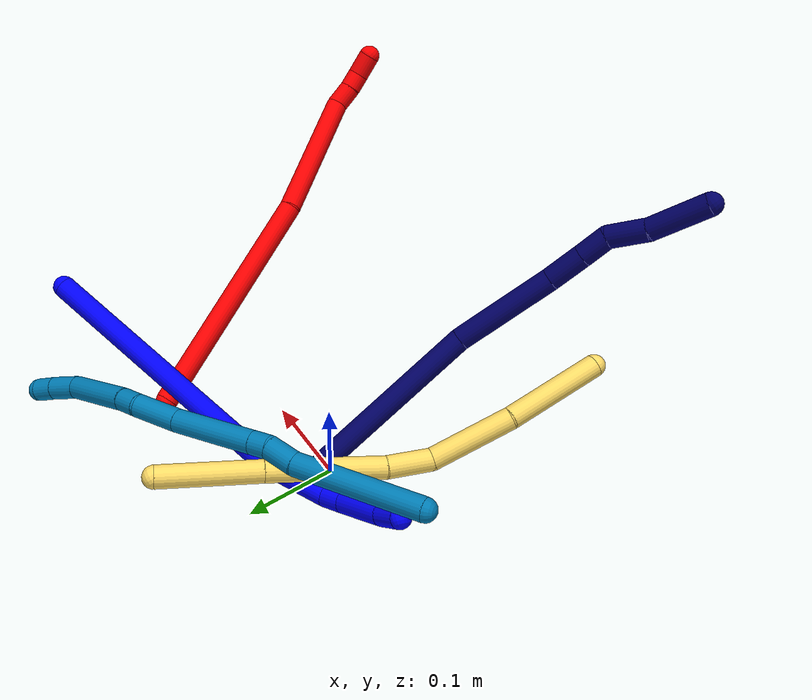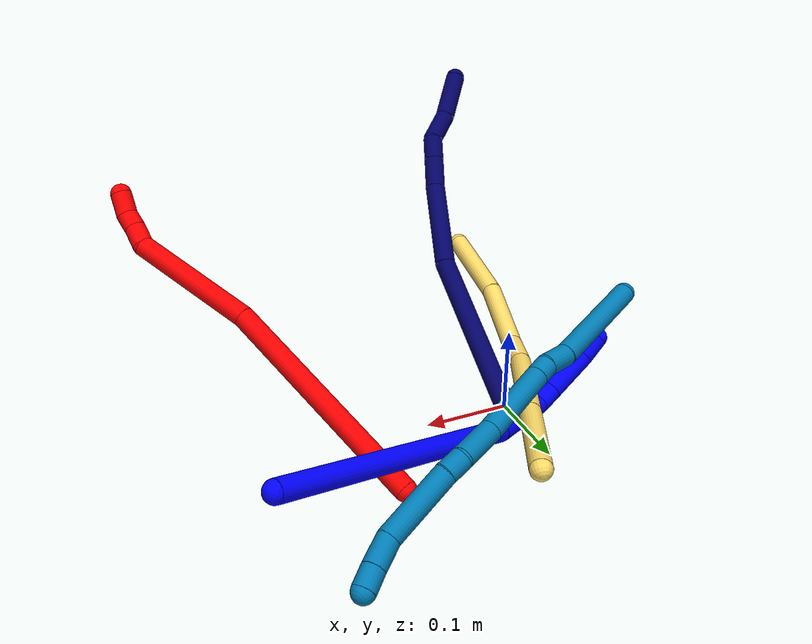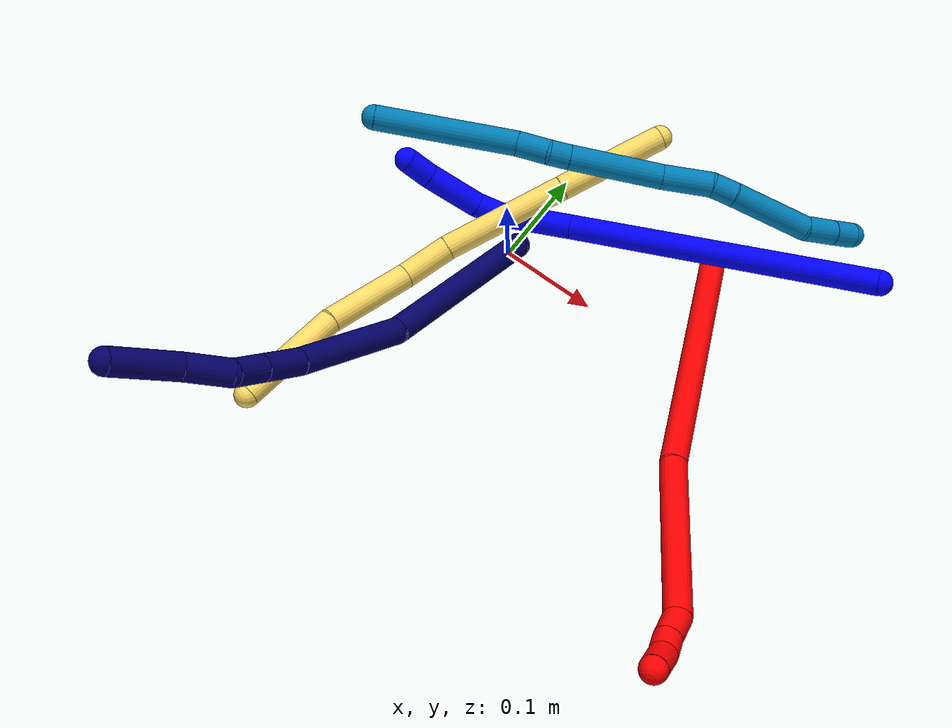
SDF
<sdf version="1.7">
 <world name="default">
  <model name="photoneo_s_sensor">
   <static>1</static>
   <pose>0 0 2 1.57079 1.57079 3.14159</pose>
   <link name="link">
    <inertial><mass>0.1</mass></inertial>
    <sensor name="sensor" type="depth">
     <update_rate>30</update_rate>
     <camera>
      <horizontal_fov>1.22</horizontal_fov>
      <image><width>1920</width><height>1200</height><format>B8G8R8</format></image>
      <clip><near>0.1</near><far>4</far></clip>
      <depth_camera><output>points</output></depth_camera>
     </camera>
     <plugin name="camera_plugin" filename="libgazebo_ros_depth_camera.so">
      <baseline>0.2</baseline>
      <alwaysOn>1</alwaysOn>
      <updateRate>0.0</updateRate>
      <cameraName>camera_ir</cameraName>
      <imageTopicName>/camera/color/image_raw</imageTopicName>
      <cameraInfoTopicName>/camera/color/camera_info</cameraInfoTopicName>
      <depthImageTopicName>/camera/depth/image_raw</depthImageTopicName>
      <depthImageCameraInfoTopicName>/camera/depth/camera_info</depthImageCameraInfoTopicName>
      <pointCloudTopicName>/camera/depth/points</pointCloudTopicName>
      <frameName>fr_optical</frameName>
      <pointCloudCutoff>0.1</pointCloudCutoff>
      <pointCloudCutoffMax>2.0</pointCloudCutoffMax>
      <distortionK1>0</distortionK1>
      <distortionK2>0</distortionK2>
      <distortionK3>0</distortionK3>
      <distortionT1>0</distortionT1>
      <distortionT2>0</distortionT2>
      <CxPrime>0</CxPrime>
      <Cx>0</Cx>
      <Cy>0</Cy>
      <focalLength>0</focalLength>
      <hackBaseline>0</hackBaseline>
     </plugin>
    </sensor>
   </link>
  </model>
  <model name="bin">
   <static>1</static>
   <link name="bottom">
    <collision name="collision-bottom">
     <pose>0 0 -0.01 0 -0 0</pose>
     <geometry><box><size>0.8 0.6 0.02</size></box></geometry>
     <surface>
      <friction><ode><mu>100</mu><mu2>100</mu2></ode></friction>
      <contact><collide_bitmask>65535</collide_bitmask></contact>
     </surface>
    </collision>
   </link>
   <link name="west_wall">
    <collision name="collision-west_wall">
     <pose>-0.41 0 0.1 0 -0 0</pose>
     <geometry><box><size>0.02 0.6 0.2</size></box></geometry>
     <surface>
      <friction><ode><mu>100</mu><mu2>100</mu2></ode></friction>
      <contact><collide_bitmask>65535</collide_bitmask></contact>
     </surface>
    </collision>
   </link>
   <link name="east_wall">
    <collision name="collision-east_wall">
     <pose>0.41 0 0.1 0 -0 0</pose>
     <geometry><box><size>0.02 0.6 0.2</size></box></geometry>
     <surface>
      <friction><ode><mu>100</mu><mu2>100</mu2></ode></friction>
      <contact><collide_bitmask>65535</collide_bitmask></contact>
     </surface>
    </collision>
   </link>
   <link name="south_wall">
    <collision name="collision-south_wall">
     <pose>0 -0.31 0.1 0 -0 0</pose>
     <geometry><box><size>0.8 0.02 0.2</size></box></geometry>
     <surface>
      <friction><ode><mu>100</mu><mu2>100</mu2></ode></friction>
      <contact><collide_bitmask>65535</collide_bitmask></contact>
     </surface>
    </collision>
   </link>
   <link name="north_wall">
    <collision name="collision-north_wall">
     <pose>0 0.31 0.1 0 -0 0</pose>
     <geometry><box><size>0.8 0.02 0.2</size></box></geometry>
     <surface>
      <friction><ode><mu>100</mu><mu2>100</mu2></ode></friction>
      <contact><collide_bitmask>65535</collide_bitmask></contact>
     </surface>
    </collision>
   </link>
  </model>
  <model name="1">
   <static>0</static>
   <link name="1">
    <collision name="collision-cylinder-e_1_1_4">
     <pose>-0.062739 -0.072856 -0.123894 2.61001 -0.411581 -1.30832</pose>
     <geometry><cylinder><radius>0.0125</radius><length>0.313649</length></cylinder></geometry>
     <surface>
      <friction><ode><mu>1.16</mu><mu2>1.16</mu2><slip1>0</slip1><slip2>0</slip2></ode></friction>
      <contact><ode><kp>1e+06</kp><kd>1</kd><max_vel>0</max_vel><min_depth>0.001</min_depth></ode></contact>
     </surface>
    </collision>
    <visual name="visual-cylinder-e_1_1_4">
     <pose>-0.062739 -0.072856 -0.123894 2.61001 -0.411581 -1.30832</pose>
     <geometry><cylinder><radius>0.0125</radius><length>0.313649</length></cylinder></geometry>
     <material><ambient>0 0 1 1</ambient></material>
    </visual>
    <collision name="collision-cylinder-e_2_4_5">
     <pose>-0.148079 -0.164196 -0.271433 2.47806 -0.645461 -1.54111</pose>
     <geometry><cylinder><radius>0.0125</radius><length>0.075139</length></cylinder></geometry>
     <surface>
      <friction><ode><mu>1.16</mu><mu2>1.16</mu2><slip1>0</slip1><slip2>0</slip2></ode></friction>
      <contact><ode><kp>1e+06</kp><kd>1</kd><max_vel>0</max_vel><min_depth>0.001</min_depth></ode></contact>
     </surface>
    </collision>
    <visual name="visual-cylinder-e_2_4_5">
     <pose>-0.148079 -0.164196 -0.271433 2.47806 -0.645461 -1.54111</pose>
     <geometry><cylinder><radius>0.0125</radius><length>0.075139</length></cylinder></geometry>
     <material><ambient>0 0 1 1</ambient></material>
    </visual>
    <collision name="collision-cylinder-e_3_5_6">
     <pose>-0.181345 -0.186105 -0.300855 2.60652 -1.00873 -2.21977</pose>
     <geometry><cylinder><radius>0.0125</radius><length>0.02521</length></cylinder></geometry>
     <surface>
      <friction><ode><mu>1.16</mu><mu2>1.16</mu2><slip1>0</slip1><slip2>0</slip2></ode></friction>
      <contact><ode><kp>1e+06</kp><kd>1</kd><max_vel>0</max_vel><min_depth>0.001</min_depth></ode></contact>
     </surface>
    </collision>
    <visual name="visual-cylinder-e_3_5_6">
     <pose>-0.181345 -0.186105 -0.300855 2.60652 -1.00873 -2.21977</pose>
     <geometry><cylinder><radius>0.0125</radius><length>0.02521</length></cylinder></geometry>
     <material><ambient>0 0 1 1</ambient></material>
    </visual>
    <collision name="collision-cylinder-e_4_6_7">
     <pose>-0.218235 -0.193168 -0.318133 2.83525 -1.13971 -2.66875</pose>
     <geometry><cylinder><radius>0.0125</radius><length>0.057729</length></cylinder></geometry>
     <surface>
      <friction><ode><mu>1.16</mu><mu2>1.16</mu2><slip1>0</slip1><slip2>0</slip2></ode></friction>
      <contact><ode><kp>1e+06</kp><kd>1</kd><max_vel>0</max_vel><min_depth>0.001</min_depth></ode></contact>
     </surface>
    </collision>
    <visual name="visual-cylinder-e_4_6_7">
     <pose>-0.218235 -0.193168 -0.318133 2.83525 -1.13971 -2.66875</pose>
     <geometry><cylinder><radius>0.0125</radius><length>0.057729</length></cylinder></geometry>
     <material><ambient>0 0 1 1</ambient></material>
    </visual>
    <collision name="collision-cylinder-e_5_7_2">
     <pose>-0.258059 -0.197295 -0.333457 3.01426 -1.29458 -2.97333</pose>
     <geometry><cylinder><radius>0.0125</radius><length>0.028273</length></cylinder></geometry>
     <surface>
      <friction><ode><mu>1.16</mu><mu2>1.16</mu2><slip1>0</slip1><slip2>0</slip2></ode></friction>
      <contact><ode><kp>1e+06</kp><kd>1</kd><max_vel>0</max_vel><min_depth>0.001</min_depth></ode></contact>
     </surface>
    </collision>
    <visual name="visual-cylinder-e_5_7_2">
     <pose>-0.258059 -0.197295 -0.333457 3.01426 -1.29458 -2.97333</pose>
     <geometry><cylinder><radius>0.0125</radius><length>0.028273</length></cylinder></geometry>
     <material><ambient>0 0 1 1</ambient></material>
    </visual>
    <collision name="collision-sphere-2">
     <pose>-0.271659 -0.197784 -0.337281 0 -0 0</pose>
     <geometry><sphere><radius>0.0125</radius></sphere></geometry>
     <surface>
      <friction><ode><mu>1.16</mu><mu2>1.16</mu2><slip1>0</slip1><slip2>0</slip2></ode></friction>
      <contact><ode><kp>1e+06</kp><kd>1</kd><max_vel>0</max_vel><min_depth>0.001</min_depth></ode></contact>
     </surface>
    </collision>
    <visual name="visual-sphere-2">
     <pose>-0.271659 -0.197784 -0.337281 0 -0 0</pose>
     <geometry><sphere><radius>0.0125</radius></sphere></geometry>
     <material><ambient>0 0 1 1</ambient></material>
    </visual>
    <collision name="collision-sphere-7">
     <pose>-0.244458 -0.196805 -0.329633 0 -0 0</pose>
     <geometry><sphere><radius>0.0125</radius></sphere></geometry>
     <surface>
      <friction><ode><mu>1.16</mu><mu2>1.16</mu2><slip1>0</slip1><slip2>0</slip2></ode></friction>
      <contact><ode><kp>1e+06</kp><kd>1</kd><max_vel>0</max_vel><min_depth>0.001</min_depth></ode></contact>
     </surface>
    </collision>
    <visual name="visual-sphere-7">
     <pose>-0.244458 -0.196805 -0.329633 0 -0 0</pose>
     <geometry><sphere><radius>0.0125</radius></sphere></geometry>
     <material><ambient>0 0 1 1</ambient></material>
    </visual>
    <collision name="collision-sphere-6">
     <pose>-0.192011 -0.189531 -0.306633 0 -0 0</pose>
     <geometry><sphere><radius>0.0125</radius></sphere></geometry>
     <surface>
      <friction><ode><mu>1.16</mu><mu2>1.16</mu2><slip1>0</slip1><slip2>0</slip2></ode></friction>
      <contact><ode><kp>1e+06</kp><kd>1</kd><max_vel>0</max_vel><min_depth>0.001</min_depth></ode></contact>
     </surface>
    </collision>
    <visual name="visual-sphere-6">
     <pose>-0.192011 -0.189531 -0.306633 0 -0 0</pose>
     <geometry><sphere><radius>0.0125</radius></sphere></geometry>
     <material><ambient>0 0 1 1</ambient></material>
    </visual>
    <collision name="collision-sphere-5">
     <pose>-0.17068 -0.18268 -0.295076 0 -0 0</pose>
     <geometry><sphere><radius>0.0125</radius></sphere></geometry>
     <surface>
      <friction><ode><mu>1.16</mu><mu2>1.16</mu2><slip1>0</slip1><slip2>0</slip2></ode></friction>
      <contact><ode><kp>1e+06</kp><kd>1</kd><max_vel>0</max_vel><min_depth>0.001</min_depth></ode></contact>
     </surface>
    </collision>
    <visual name="visual-sphere-5">
     <pose>-0.17068 -0.18268 -0.295076 0 -0 0</pose>
     <geometry><sphere><radius>0.0125</radius></sphere></geometry>
     <material><ambient>0 0 1 1</ambient></material>
    </visual>
    <collision name="collision-sphere-1">
     <geometry><sphere><radius>0.0125</radius></sphere></geometry>
     <surface>
      <friction><ode><mu>1.16</mu><mu2>1.16</mu2><slip1>0</slip1><slip2>0</slip2></ode></friction>
      <contact><ode><kp>1e+06</kp><kd>1</kd><max_vel>0</max_vel><min_depth>0.001</min_depth></ode></contact>
     </surface>
    </collision>
    <visual name="visual-sphere-1">
     <geometry><sphere><radius>0.0125</radius></sphere></geometry>
     <material><ambient>0 0 1 1</ambient></material>
    </visual>
    <collision name="collision-sphere-4">
     <pose>-0.125478 -0.145712 -0.247789 0 -0 0</pose>
     <geometry><sphere><radius>0.0125</radius></sphere></geometry>
     <surface>
      <friction><ode><mu>1.16</mu><mu2>1.16</mu2><slip1>0</slip1><slip2>0</slip2></ode></friction>
      <contact><ode><kp>1e+06</kp><kd>1</kd><max_vel>0</max_vel><min_depth>0.001</min_depth></ode></contact>
     </surface>
    </collision>
    <visual name="visual-sphere-4">
     <pose>-0.125478 -0.145712 -0.247789 0 -0 0</pose>
     <geometry><sphere><radius>0.0125</radius></sphere></geometry>
     <material><ambient>0 0 1 1</ambient></material>
    </visual>
    <inertial>
     <pose>-0.110541 -0.11322 -0.189265 0 -0 0</pose>
     <mass>0.5</mass>
     <inertia>
      <ixx>-0.001736</ixx>
      <ixy>0</ixy>
      <ixz>0</ixz>
      <iyy>-0.002373</iyy>
      <iyz>0</iyz>
      <izz>0.002274</izz>
     </inertia>
    </inertial>
   </link>
   <pose>0.326875 0.150113 0.092258 0.653339 0.900551 0.427882</pose>
  </model>
  <model name="2">
   <static>0</static>
   <link name="2">
    <collision name="collision-cylinder-e_1_1_4">
     <pose>0.014593 -0.017977 0.133135 0.134215 0.108197 0.007279</pose>
     <geometry><cylinder><radius>0.0125</radius><length>0.270268</length></cylinder></geometry>
     <surface>
      <friction><ode><mu>1.16</mu><mu2>1.16</mu2><slip1>0</slip1><slip2>0</slip2></ode></friction>
      <contact><ode><kp>1e+06</kp><kd>1</kd><max_vel>0</max_vel><min_depth>0.001</min_depth></ode></contact>
     </surface>
    </collision>
    <visual name="visual-cylinder-e_1_1_4">
     <pose>0.014593 -0.017977 0.133135 0.134215 0.108197 0.007279</pose>
     <geometry><cylinder><radius>0.0125</radius><length>0.270268</length></cylinder></geometry>
     <material><ambient>1 0 0 1</ambient></material>
    </visual>
    <collision name="collision-cylinder-e_2_4_5">
     <pose>0.036583 -0.060967 0.339736 0.328163 0.095043 0.015748</pose>
     <geometry><cylinder><radius>0.0125</radius><length>0.155917</length></cylinder></geometry>
     <surface>
      <friction><ode><mu>1.16</mu><mu2>1.16</mu2><slip1>0</slip1><slip2>0</slip2></ode></friction>
      <contact><ode><kp>1e+06</kp><kd>1</kd><max_vel>0</max_vel><min_depth>0.001</min_depth></ode></contact>
     </surface>
    </collision>
    <visual name="visual-cylinder-e_2_4_5">
     <pose>0.036583 -0.060967 0.339736 0.328163 0.095043 0.015748</pose>
     <geometry><cylinder><radius>0.0125</radius><length>0.155917</length></cylinder></geometry>
     <material><ambient>1 0 0 1</ambient></material>
    </visual>
    <collision name="collision-cylinder-e_3_5_6">
     <pose>0.046547 -0.084586 0.426036 -0.108176 0.196162 -0.010654</pose>
     <geometry><cylinder><radius>0.0125</radius><length>0.026325</length></cylinder></geometry>
     <surface>
      <friction><ode><mu>1.16</mu><mu2>1.16</mu2><slip1>0</slip1><slip2>0</slip2></ode></friction>
      <contact><ode><kp>1e+06</kp><kd>1</kd><max_vel>0</max_vel><min_depth>0.001</min_depth></ode></contact>
     </surface>
    </collision>
    <visual name="visual-cylinder-e_3_5_6">
     <pose>0.046547 -0.084586 0.426036 -0.108176 0.196162 -0.010654</pose>
     <geometry><cylinder><radius>0.0125</radius><length>0.026325</length></cylinder></geometry>
     <material><ambient>1 0 0 1</ambient></material>
    </visual>
    <collision name="collision-cylinder-e_4_6_7">
     <pose>0.05184 -0.083127 0.448569 -0.00671 0.274141 -0.000926</pose>
     <geometry><cylinder><radius>0.0125</radius><length>0.020149</length></cylinder></geometry>
     <surface>
      <friction><ode><mu>1.16</mu><mu2>1.16</mu2><slip1>0</slip1><slip2>0</slip2></ode></friction>
      <contact><ode><kp>1e+06</kp><kd>1</kd><max_vel>0</max_vel><min_depth>0.001</min_depth></ode></contact>
     </surface>
    </collision>
    <visual name="visual-cylinder-e_4_6_7">
     <pose>0.05184 -0.083127 0.448569 -0.00671 0.274141 -0.000926</pose>
     <geometry><cylinder><radius>0.0125</radius><length>0.020149</length></cylinder></geometry>
     <material><ambient>1 0 0 1</ambient></material>
    </visual>
    <collision name="collision-cylinder-e_5_7_2">
     <pose>0.060793 -0.080132 0.470079 -0.243174 0.472851 -0.058862</pose>
     <geometry><cylinder><radius>0.0125</radius><length>0.027341</length></cylinder></geometry>
     <surface>
      <friction><ode><mu>1.16</mu><mu2>1.16</mu2><slip1>0</slip1><slip2>0</slip2></ode></friction>
      <contact><ode><kp>1e+06</kp><kd>1</kd><max_vel>0</max_vel><min_depth>0.001</min_depth></ode></contact>
     </surface>
    </collision>
    <visual name="visual-cylinder-e_5_7_2">
     <pose>0.060793 -0.080132 0.470079 -0.243174 0.472851 -0.058862</pose>
     <geometry><cylinder><radius>0.0125</radius><length>0.027341</length></cylinder></geometry>
     <material><ambient>1 0 0 1</ambient></material>
    </visual>
    <collision name="collision-sphere-2">
     <pose>0.067019 -0.077201 0.481892 0 -0 0</pose>
     <geometry><sphere><radius>0.0125</radius></sphere></geometry>
     <surface>
      <friction><ode><mu>1.16</mu><mu2>1.16</mu2><slip1>0</slip1><slip2>0</slip2></ode></friction>
      <contact><ode><kp>1e+06</kp><kd>1</kd><max_vel>0</max_vel><min_depth>0.001</min_depth></ode></contact>
     </surface>
    </collision>
    <visual name="visual-sphere-2">
     <pose>0.067019 -0.077201 0.481892 0 -0 0</pose>
     <geometry><sphere><radius>0.0125</radius></sphere></geometry>
     <material><ambient>1 0 0 1</ambient></material>
    </visual>
    <collision name="collision-sphere-7">
     <pose>0.054567 -0.083062 0.458267 0 -0 0</pose>
     <geometry><sphere><radius>0.0125</radius></sphere></geometry>
     <surface>
      <friction><ode><mu>1.16</mu><mu2>1.16</mu2><slip1>0</slip1><slip2>0</slip2></ode></friction>
      <contact><ode><kp>1e+06</kp><kd>1</kd><max_vel>0</max_vel><min_depth>0.001</min_depth></ode></contact>
     </surface>
    </collision>
    <visual name="visual-sphere-7">
     <pose>0.054567 -0.083062 0.458267 0 -0 0</pose>
     <geometry><sphere><radius>0.0125</radius></sphere></geometry>
     <material><ambient>1 0 0 1</ambient></material>
    </visual>
    <collision name="collision-sphere-6">
     <pose>0.049113 -0.083192 0.438871 0 -0 0</pose>
     <geometry><sphere><radius>0.0125</radius></sphere></geometry>
     <surface>
      <friction><ode><mu>1.16</mu><mu2>1.16</mu2><slip1>0</slip1><slip2>0</slip2></ode></friction>
      <contact><ode><kp>1e+06</kp><kd>1</kd><max_vel>0</max_vel><min_depth>0.001</min_depth></ode></contact>
     </surface>
    </collision>
    <visual name="visual-sphere-6">
     <pose>0.049113 -0.083192 0.438871 0 -0 0</pose>
     <geometry><sphere><radius>0.0125</radius></sphere></geometry>
     <material><ambient>1 0 0 1</ambient></material>
    </visual>
    <collision name="collision-sphere-5">
     <pose>0.043982 -0.08598 0.413201 0 -0 0</pose>
     <geometry><sphere><radius>0.0125</radius></sphere></geometry>
     <surface>
      <friction><ode><mu>1.16</mu><mu2>1.16</mu2><slip1>0</slip1><slip2>0</slip2></ode></friction>
      <contact><ode><kp>1e+06</kp><kd>1</kd><max_vel>0</max_vel><min_depth>0.001</min_depth></ode></contact>
     </surface>
    </collision>
    <visual name="visual-sphere-5">
     <pose>0.043982 -0.08598 0.413201 0 -0 0</pose>
     <geometry><sphere><radius>0.0125</radius></sphere></geometry>
     <material><ambient>1 0 0 1</ambient></material>
    </visual>
    <collision name="collision-sphere-1">
     <geometry><sphere><radius>0.0125</radius></sphere></geometry>
     <surface>
      <friction><ode><mu>1.16</mu><mu2>1.16</mu2><slip1>0</slip1><slip2>0</slip2></ode></friction>
      <contact><ode><kp>1e+06</kp><kd>1</kd><max_vel>0</max_vel><min_depth>0.001</min_depth></ode></contact>
     </surface>
    </collision>
    <visual name="visual-sphere-1">
     <geometry><sphere><radius>0.0125</radius></sphere></geometry>
     <material><ambient>1 0 0 1</ambient></material>
    </visual>
    <collision name="collision-sphere-4">
     <pose>0.029185 -0.035954 0.266271 0 -0 0</pose>
     <geometry><sphere><radius>0.0125</radius></sphere></geometry>
     <surface>
      <friction><ode><mu>1.16</mu><mu2>1.16</mu2><slip1>0</slip1><slip2>0</slip2></ode></friction>
      <contact><ode><kp>1e+06</kp><kd>1</kd><max_vel>0</max_vel><min_depth>0.001</min_depth></ode></contact>
     </surface>
    </collision>
    <visual name="visual-sphere-4">
     <pose>0.029185 -0.035954 0.266271 0 -0 0</pose>
     <geometry><sphere><radius>0.0125</radius></sphere></geometry>
     <material><ambient>1 0 0 1</ambient></material>
    </visual>
    <inertial>
     <pose>0.02716 -0.040914 0.244118 0 -0 0</pose>
     <mass>0.5</mass>
     <inertia>
      <ixx>0.001995</ixx>
      <ixy>0</ixy>
      <ixz>0</ixz>
      <iyy>0.001963</iyy>
      <iyz>0</iyz>
      <izz>0.000149</izz>
     </inertia>
    </inertial>
   </link>
   <pose>0.17664 0.105623 0.011497 0.609966 -1.14692 1.15647</pose>
  </model>
  <model name="5">
   <static>0</static>
   <link name="5">
    <collision name="collision-cylinder-e_1_1_4">
     <pose>-0.007391 -0.029251 0.047713 0.549967 -0.131305 -0.037094</pose>
     <geometry><cylinder><radius>0.0125</radius><length>0.112904</length></cylinder></geometry>
     <surface>
      <friction><ode><mu>1.16</mu><mu2>1.16</mu2><slip1>0</slip1><slip2>0</slip2></ode></friction>
      <contact><ode><kp>1e+06</kp><kd>1</kd><max_vel>0</max_vel><min_depth>0.001</min_depth></ode></contact>
     </surface>
    </collision>
    <visual name="visual-cylinder-e_1_1_4">
     <pose>-0.007391 -0.029251 0.047713 0.549967 -0.131305 -0.037094</pose>
     <geometry><cylinder><radius>0.0125</radius><length>0.112904</length></cylinder></geometry>
     <material><ambient>1 0.858824 0.4 1</ambient></material>
    </visual>
    <collision name="collision-cylinder-e_2_4_5">
     <pose>-0.0233 -0.093655 0.148934 0.581257 -0.132274 -0.039615</pose>
     <geometry><cylinder><radius>0.0125</radius><length>0.129171</length></cylinder></geometry>
     <surface>
      <friction><ode><mu>1.16</mu><mu2>1.16</mu2><slip1>0</slip1><slip2>0</slip2></ode></friction>
      <contact><ode><kp>1e+06</kp><kd>1</kd><max_vel>0</max_vel><min_depth>0.001</min_depth></ode></contact>
     </surface>
    </collision>
    <visual name="visual-cylinder-e_2_4_5">
     <pose>-0.0233 -0.093655 0.148934 0.581257 -0.132274 -0.039615</pose>
     <geometry><cylinder><radius>0.0125</radius><length>0.129171</length></cylinder></geometry>
     <material><ambient>1 0.858824 0.4 1</ambient></material>
    </visual>
    <collision name="collision-cylinder-e_3_5_6">
     <pose>-0.031926 -0.141307 0.224574 0.514097 -0.004238 -0.001114</pose>
     <geometry><cylinder><radius>0.0125</radius><length>0.050839</length></cylinder></geometry>
     <surface>
      <friction><ode><mu>1.16</mu><mu2>1.16</mu2><slip1>0</slip1><slip2>0</slip2></ode></friction>
      <contact><ode><kp>1e+06</kp><kd>1</kd><max_vel>0</max_vel><min_depth>0.001</min_depth></ode></contact>
     </surface>
    </collision>
    <visual name="visual-cylinder-e_3_5_6">
     <pose>-0.031926 -0.141307 0.224574 0.514097 -0.004238 -0.001114</pose>
     <geometry><cylinder><radius>0.0125</radius><length>0.050839</length></cylinder></geometry>
     <material><ambient>1 0.858824 0.4 1</ambient></material>
    </visual>
    <collision name="collision-cylinder-e_4_6_7">
     <pose>-0.02963 -0.159935 0.294076 0.128658 0.050278 0.00324</pose>
     <geometry><cylinder><radius>0.0125</radius><length>0.095648</length></cylinder></geometry>
     <surface>
      <friction><ode><mu>1.16</mu><mu2>1.16</mu2><slip1>0</slip1><slip2>0</slip2></ode></friction>
      <contact><ode><kp>1e+06</kp><kd>1</kd><max_vel>0</max_vel><min_depth>0.001</min_depth></ode></contact>
     </surface>
    </collision>
    <visual name="visual-cylinder-e_4_6_7">
     <pose>-0.02963 -0.159935 0.294076 0.128658 0.050278 0.00324</pose>
     <geometry><cylinder><radius>0.0125</radius><length>0.095648</length></cylinder></geometry>
     <material><ambient>1 0.858824 0.4 1</ambient></material>
    </visual>
    <collision name="collision-cylinder-e_5_7_2">
     <pose>-0.015599 -0.176666 0.394896 0.195829 0.210226 0.020726</pose>
     <geometry><cylinder><radius>0.0125</radius><length>0.111439</length></cylinder></geometry>
     <surface>
      <friction><ode><mu>1.16</mu><mu2>1.16</mu2><slip1>0</slip1><slip2>0</slip2></ode></friction>
      <contact><ode><kp>1e+06</kp><kd>1</kd><max_vel>0</max_vel><min_depth>0.001</min_depth></ode></contact>
     </surface>
    </collision>
    <visual name="visual-cylinder-e_5_7_2">
     <pose>-0.015599 -0.176666 0.394896 0.195829 0.210226 0.020726</pose>
     <geometry><cylinder><radius>0.0125</radius><length>0.111439</length></cylinder></geometry>
     <material><ambient>1 0.858824 0.4 1</ambient></material>
    </visual>
    <collision name="collision-sphere-2">
     <pose>-0.003972 -0.18727 0.448348 0 -0 0</pose>
     <geometry><sphere><radius>0.0125</radius></sphere></geometry>
     <surface>
      <friction><ode><mu>1.16</mu><mu2>1.16</mu2><slip1>0</slip1><slip2>0</slip2></ode></friction>
      <contact><ode><kp>1e+06</kp><kd>1</kd><max_vel>0</max_vel><min_depth>0.001</min_depth></ode></contact>
     </surface>
    </collision>
    <visual name="visual-sphere-2">
     <pose>-0.003972 -0.18727 0.448348 0 -0 0</pose>
     <geometry><sphere><radius>0.0125</radius></sphere></geometry>
     <material><ambient>1 0.858824 0.4 1</ambient></material>
    </visual>
    <collision name="collision-sphere-7">
     <pose>-0.027227 -0.166063 0.341445 0 -0 0</pose>
     <geometry><sphere><radius>0.0125</radius></sphere></geometry>
     <surface>
      <friction><ode><mu>1.16</mu><mu2>1.16</mu2><slip1>0</slip1><slip2>0</slip2></ode></friction>
      <contact><ode><kp>1e+06</kp><kd>1</kd><max_vel>0</max_vel><min_depth>0.001</min_depth></ode></contact>
     </surface>
    </collision>
    <visual name="visual-sphere-7">
     <pose>-0.027227 -0.166063 0.341445 0 -0 0</pose>
     <geometry><sphere><radius>0.0125</radius></sphere></geometry>
     <material><ambient>1 0.858824 0.4 1</ambient></material>
    </visual>
    <collision name="collision-sphere-6">
     <pose>-0.032034 -0.153807 0.246708 0 -0 0</pose>
     <geometry><sphere><radius>0.0125</radius></sphere></geometry>
     <surface>
      <friction><ode><mu>1.16</mu><mu2>1.16</mu2><slip1>0</slip1><slip2>0</slip2></ode></friction>
      <contact><ode><kp>1e+06</kp><kd>1</kd><max_vel>0</max_vel><min_depth>0.001</min_depth></ode></contact>
     </surface>
    </collision>
    <visual name="visual-sphere-6">
     <pose>-0.032034 -0.153807 0.246708 0 -0 0</pose>
     <geometry><sphere><radius>0.0125</radius></sphere></geometry>
     <material><ambient>1 0.858824 0.4 1</ambient></material>
    </visual>
    <collision name="collision-sphere-5">
     <pose>-0.031818 -0.128807 0.202441 0 -0 0</pose>
     <geometry><sphere><radius>0.0125</radius></sphere></geometry>
     <surface>
      <friction><ode><mu>1.16</mu><mu2>1.16</mu2><slip1>0</slip1><slip2>0</slip2></ode></friction>
      <contact><ode><kp>1e+06</kp><kd>1</kd><max_vel>0</max_vel><min_depth>0.001</min_depth></ode></contact>
     </surface>
    </collision>
    <visual name="visual-sphere-5">
     <pose>-0.031818 -0.128807 0.202441 0 -0 0</pose>
     <geometry><sphere><radius>0.0125</radius></sphere></geometry>
     <material><ambient>1 0.858824 0.4 1</ambient></material>
    </visual>
    <collision name="collision-sphere-1">
     <geometry><sphere><radius>0.0125</radius></sphere></geometry>
     <surface>
      <friction><ode><mu>1.16</mu><mu2>1.16</mu2><slip1>0</slip1><slip2>0</slip2></ode></friction>
      <contact><ode><kp>1e+06</kp><kd>1</kd><max_vel>0</max_vel><min_depth>0.001</min_depth></ode></contact>
     </surface>
    </collision>
    <visual name="visual-sphere-1">
     <geometry><sphere><radius>0.0125</radius></sphere></geometry>
     <material><ambient>1 0.858824 0.4 1</ambient></material>
    </visual>
    <collision name="collision-sphere-4">
     <pose>-0.014782 -0.058502 0.095426 0 -0 0</pose>
     <geometry><sphere><radius>0.0125</radius></sphere></geometry>
     <surface>
      <friction><ode><mu>1.16</mu><mu2>1.16</mu2><slip1>0</slip1><slip2>0</slip2></ode></friction>
      <contact><ode><kp>1e+06</kp><kd>1</kd><max_vel>0</max_vel><min_depth>0.001</min_depth></ode></contact>
     </surface>
    </collision>
    <visual name="visual-sphere-4">
     <pose>-0.014782 -0.058502 0.095426 0 -0 0</pose>
     <geometry><sphere><radius>0.0125</radius></sphere></geometry>
     <material><ambient>1 0.858824 0.4 1</ambient></material>
    </visual>
    <inertial>
     <pose>-0.020079 -0.115138 0.216353 0 -0 0</pose>
     <mass>0.5</mass>
     <inertia>
      <ixx>0.000503</ixx>
      <ixy>0</ixy>
      <ixz>0</ixz>
      <iyy>0.000442</iyy>
      <iyz>0</iyz>
      <izz>0.000251</izz>
     </inertia>
    </inertial>
   </link>
   <pose>0.060635 0.174618 0.052737 1.13625 0.140399 -0.302236</pose>
  </model>
  <model name="7">
   <static>0</static>
   <link name="7">
    <collision name="collision-cylinder-e_1_1_4">
     <pose>-0.003031 -0.020494 0.098247 0.205647 -0.030193 -0.003116</pose>
     <geometry><cylinder><radius>0.0125</radius><length>0.200816</length></cylinder></geometry>
     <surface>
      <friction><ode><mu>1.16</mu><mu2>1.16</mu2><slip1>0</slip1><slip2>0</slip2></ode></friction>
      <contact><ode><kp>1e+06</kp><kd>1</kd><max_vel>0</max_vel><min_depth>0.001</min_depth></ode></contact>
     </surface>
    </collision>
    <visual name="visual-cylinder-e_1_1_4">
     <pose>-0.003031 -0.020494 0.098247 0.205647 -0.030193 -0.003116</pose>
     <geometry><cylinder><radius>0.0125</radius><length>0.200816</length></cylinder></geometry>
     <material><ambient>0.003922 0 0.403922 1</ambient></material>
    </visual>
    <collision name="collision-cylinder-e_2_4_5">
     <pose>-0.003406 -0.03993 0.254263 -0.018309 0.045946 -0.000421</pose>
     <geometry><cylinder><radius>0.0125</radius><length>0.115678</length></cylinder></geometry>
     <surface>
      <friction><ode><mu>1.16</mu><mu2>1.16</mu2><slip1>0</slip1><slip2>0</slip2></ode></friction>
      <contact><ode><kp>1e+06</kp><kd>1</kd><max_vel>0</max_vel><min_depth>0.001</min_depth></ode></contact>
     </surface>
    </collision>
    <visual name="visual-cylinder-e_2_4_5">
     <pose>-0.003406 -0.03993 0.254263 -0.018309 0.045946 -0.000421</pose>
     <geometry><cylinder><radius>0.0125</radius><length>0.115678</length></cylinder></geometry>
     <material><ambient>0.003922 0 0.403922 1</ambient></material>
    </visual>
    <collision name="collision-cylinder-e_3_5_6">
     <pose>0.002966 -0.037724 0.33249 -0.056084 0.179363 -0.005044</pose>
     <geometry><cylinder><radius>0.0125</radius><length>0.041648</length></cylinder></geometry>
     <surface>
      <friction><ode><mu>1.16</mu><mu2>1.16</mu2><slip1>0</slip1><slip2>0</slip2></ode></friction>
      <contact><ode><kp>1e+06</kp><kd>1</kd><max_vel>0</max_vel><min_depth>0.001</min_depth></ode></contact>
     </surface>
    </collision>
    <visual name="visual-cylinder-e_3_5_6">
     <pose>0.002966 -0.037724 0.33249 -0.056084 0.179363 -0.005044</pose>
     <geometry><cylinder><radius>0.0125</radius><length>0.041648</length></cylinder></geometry>
     <material><ambient>0.003922 0 0.403922 1</ambient></material>
    </visual>
    <collision name="collision-cylinder-e_4_6_7">
     <pose>0.009715 -0.035825 0.368705 -0.047595 0.19003 -0.004537</pose>
     <geometry><cylinder><radius>0.0125</radius><length>0.032129</length></cylinder></geometry>
     <surface>
      <friction><ode><mu>1.16</mu><mu2>1.16</mu2><slip1>0</slip1><slip2>0</slip2></ode></friction>
      <contact><ode><kp>1e+06</kp><kd>1</kd><max_vel>0</max_vel><min_depth>0.001</min_depth></ode></contact>
     </surface>
    </collision>
    <visual name="visual-cylinder-e_4_6_7">
     <pose>0.009715 -0.035825 0.368705 -0.047595 0.19003 -0.004537</pose>
     <geometry><cylinder><radius>0.0125</radius><length>0.032129</length></cylinder></geometry>
     <material><ambient>0.003922 0 0.403922 1</ambient></material>
    </visual>
    <collision name="collision-cylinder-e_5_7_8">
     <pose>0.013943 -0.024323 0.403302 -0.51858 0.054957 -0.014581</pose>
     <geometry><cylinder><radius>0.0125</radius><length>0.04345</length></cylinder></geometry>
     <surface>
      <friction><ode><mu>1.16</mu><mu2>1.16</mu2><slip1>0</slip1><slip2>0</slip2></ode></friction>
      <contact><ode><kp>1e+06</kp><kd>1</kd><max_vel>0</max_vel><min_depth>0.001</min_depth></ode></contact>
     </surface>
    </collision>
    <visual name="visual-cylinder-e_5_7_8">
     <pose>0.013943 -0.024323 0.403302 -0.51858 0.054957 -0.014581</pose>
     <geometry><cylinder><radius>0.0125</radius><length>0.04345</length></cylinder></geometry>
     <material><ambient>0.003922 0 0.403922 1</ambient></material>
    </visual>
    <collision name="collision-cylinder-e_6_8_2">
     <pose>0.020811 -0.002797 0.452963 -0.336293 0.172079 -0.029281</pose>
     <geometry><cylinder><radius>0.0125</radius><length>0.066279</length></cylinder></geometry>
     <surface>
      <friction><ode><mu>1.16</mu><mu2>1.16</mu2><slip1>0</slip1><slip2>0</slip2></ode></friction>
      <contact><ode><kp>1e+06</kp><kd>1</kd><max_vel>0</max_vel><min_depth>0.001</min_depth></ode></contact>
     </surface>
    </collision>
    <visual name="visual-cylinder-e_6_8_2">
     <pose>0.020811 -0.002797 0.452963 -0.336293 0.172079 -0.029281</pose>
     <geometry><cylinder><radius>0.0125</radius><length>0.066279</length></cylinder></geometry>
     <material><ambient>0.003922 0 0.403922 1</ambient></material>
    </visual>
    <collision name="collision-sphere-2">
     <pose>0.026485 0.007978 0.483785 0 -0 0</pose>
     <geometry><sphere><radius>0.0125</radius></sphere></geometry>
     <surface>
      <friction><ode><mu>1.16</mu><mu2>1.16</mu2><slip1>0</slip1><slip2>0</slip2></ode></friction>
      <contact><ode><kp>1e+06</kp><kd>1</kd><max_vel>0</max_vel><min_depth>0.001</min_depth></ode></contact>
     </surface>
    </collision>
    <visual name="visual-sphere-2">
     <pose>0.026485 0.007978 0.483785 0 -0 0</pose>
     <geometry><sphere><radius>0.0125</radius></sphere></geometry>
     <material><ambient>0.003922 0 0.403922 1</ambient></material>
    </visual>
    <collision name="collision-sphere-4">
     <pose>-0.006062 -0.040988 0.196495 0 -0 0</pose>
     <geometry><sphere><radius>0.0125</radius></sphere></geometry>
     <surface>
      <friction><ode><mu>1.16</mu><mu2>1.16</mu2><slip1>0</slip1><slip2>0</slip2></ode></friction>
      <contact><ode><kp>1e+06</kp><kd>1</kd><max_vel>0</max_vel><min_depth>0.001</min_depth></ode></contact>
     </surface>
    </collision>
    <visual name="visual-sphere-4">
     <pose>-0.006062 -0.040988 0.196495 0 -0 0</pose>
     <geometry><sphere><radius>0.0125</radius></sphere></geometry>
     <material><ambient>0.003922 0 0.403922 1</ambient></material>
    </visual>
    <collision name="collision-sphere-1">
     <geometry><sphere><radius>0.0125</radius></sphere></geometry>
     <surface>
      <friction><ode><mu>1.16</mu><mu2>1.16</mu2><slip1>0</slip1><slip2>0</slip2></ode></friction>
      <contact><ode><kp>1e+06</kp><kd>1</kd><max_vel>0</max_vel><min_depth>0.001</min_depth></ode></contact>
     </surface>
    </collision>
    <visual name="visual-sphere-1">
     <geometry><sphere><radius>0.0125</radius></sphere></geometry>
     <material><ambient>0.003922 0 0.403922 1</ambient></material>
    </visual>
    <collision name="collision-sphere-8">
     <pose>0.015136 -0.013571 0.422142 0 -0 0</pose>
     <geometry><sphere><radius>0.0125</radius></sphere></geometry>
     <surface>
      <friction><ode><mu>1.16</mu><mu2>1.16</mu2><slip1>0</slip1><slip2>0</slip2></ode></friction>
      <contact><ode><kp>1e+06</kp><kd>1</kd><max_vel>0</max_vel><min_depth>0.001</min_depth></ode></contact>
     </surface>
    </collision>
    <visual name="visual-sphere-8">
     <pose>0.015136 -0.013571 0.422142 0 -0 0</pose>
     <geometry><sphere><radius>0.0125</radius></sphere></geometry>
     <material><ambient>0.003922 0 0.403922 1</ambient></material>
    </visual>
    <collision name="collision-sphere-5">
     <pose>-0.000749 -0.038872 0.312032 0 -0 0</pose>
     <geometry><sphere><radius>0.0125</radius></sphere></geometry>
     <surface>
      <friction><ode><mu>1.16</mu><mu2>1.16</mu2><slip1>0</slip1><slip2>0</slip2></ode></friction>
      <contact><ode><kp>1e+06</kp><kd>1</kd><max_vel>0</max_vel><min_depth>0.001</min_depth></ode></contact>
     </surface>
    </collision>
    <visual name="visual-sphere-5">
     <pose>-0.000749 -0.038872 0.312032 0 -0 0</pose>
     <geometry><sphere><radius>0.0125</radius></sphere></geometry>
     <material><ambient>0.003922 0 0.403922 1</ambient></material>
    </visual>
    <collision name="collision-sphere-6">
     <pose>0.006681 -0.036575 0.352947 0 -0 0</pose>
     <geometry><sphere><radius>0.0125</radius></sphere></geometry>
     <surface>
      <friction><ode><mu>1.16</mu><mu2>1.16</mu2><slip1>0</slip1><slip2>0</slip2></ode></friction>
      <contact><ode><kp>1e+06</kp><kd>1</kd><max_vel>0</max_vel><min_depth>0.001</min_depth></ode></contact>
     </surface>
    </collision>
    <visual name="visual-sphere-6">
     <pose>0.006681 -0.036575 0.352947 0 -0 0</pose>
     <geometry><sphere><radius>0.0125</radius></sphere></geometry>
     <material><ambient>0.003922 0 0.403922 1</ambient></material>
    </visual>
    <collision name="collision-sphere-7">
     <pose>0.01275 -0.035074 0.384462 0 -0 0</pose>
     <geometry><sphere><radius>0.0125</radius></sphere></geometry>
     <surface>
      <friction><ode><mu>1.16</mu><mu2>1.16</mu2><slip1>0</slip1><slip2>0</slip2></ode></friction>
      <contact><ode><kp>1e+06</kp><kd>1</kd><max_vel>0</max_vel><min_depth>0.001</min_depth></ode></contact>
     </surface>
    </collision>
    <visual name="visual-sphere-7">
     <pose>0.01275 -0.035074 0.384462 0 -0 0</pose>
     <geometry><sphere><radius>0.0125</radius></sphere></geometry>
     <material><ambient>0.003922 0 0.403922 1</ambient></material>
    </visual>
    <inertial>
     <pose>0.002836 -0.025398 0.244763 0 -0 0</pose>
     <mass>0.5</mass>
     <inertia>
      <ixx>0.000861</ixx>
      <ixy>0</ixy>
      <ixz>0</ixz>
      <iyy>0.000844</iyy>
      <iyz>0</iyz>
      <izz>0.000168</izz>
     </inertia>
    </inertial>
   </link>
   <pose>0.005873 0.008155 0.011497 -0.145847 -1.01831 1.46289</pose>
  </model>
  <model name="9">
   <static>0</static>
   <link name="9">
    <collision name="collision-cylinder-e_1_1_4">
     <pose>0.000993 -0.004881 0.070386 0.069231 0.014079 0.000488</pose>
     <geometry><cylinder><radius>0.0125</radius><length>0.141124</length></cylinder></geometry>
     <surface>
      <friction><ode><mu>1.16</mu><mu2>1.16</mu2><slip1>0</slip1><slip2>0</slip2></ode></friction>
      <contact><ode><kp>1e+06</kp><kd>1</kd><max_vel>0</max_vel><min_depth>0.001</min_depth></ode></contact>
     </surface>
    </collision>
    <visual name="visual-cylinder-e_1_1_4">
     <pose>0.000993 -0.004881 0.070386 0.069231 0.014079 0.000488</pose>
     <geometry><cylinder><radius>0.0125</radius><length>0.141124</length></cylinder></geometry>
     <material><ambient>0 0.490196 0.709804 1</ambient></material>
    </visual>
    <collision name="collision-cylinder-e_2_4_5">
     <pose>0.004686 -0.013378 0.156289 0.228987 0.167838 0.019346</pose>
     <geometry><cylinder><radius>0.0125</radius><length>0.032321</length></cylinder></geometry>
     <surface>
      <friction><ode><mu>1.16</mu><mu2>1.16</mu2><slip1>0</slip1><slip2>0</slip2></ode></friction>
      <contact><ode><kp>1e+06</kp><kd>1</kd><max_vel>0</max_vel><min_depth>0.001</min_depth></ode></contact>
     </surface>
    </collision>
    <visual name="visual-cylinder-e_2_4_5">
     <pose>0.004686 -0.013378 0.156289 0.228987 0.167838 0.019346</pose>
     <geometry><cylinder><radius>0.0125</radius><length>0.032321</length></cylinder></geometry>
     <material><ambient>0 0.490196 0.709804 1</ambient></material>
    </visual>
    <collision name="collision-cylinder-e_3_5_6">
     <pose>0.007786 -0.016834 0.181916 -0.0159 0.039507 -0.000314</pose>
     <geometry><cylinder><radius>0.0125</radius><length>0.020236</length></cylinder></geometry>
     <surface>
      <friction><ode><mu>1.16</mu><mu2>1.16</mu2><slip1>0</slip1><slip2>0</slip2></ode></friction>
      <contact><ode><kp>1e+06</kp><kd>1</kd><max_vel>0</max_vel><min_depth>0.001</min_depth></ode></contact>
     </surface>
    </collision>
    <visual name="visual-cylinder-e_3_5_6">
     <pose>0.007786 -0.016834 0.181916 -0.0159 0.039507 -0.000314</pose>
     <geometry><cylinder><radius>0.0125</radius><length>0.020236</length></cylinder></geometry>
     <material><ambient>0 0.490196 0.709804 1</ambient></material>
    </visual>
    <collision name="collision-cylinder-e_4_6_7">
     <pose>0.009088 -0.016627 0.238851 -0.000982 0.019274 -9e-06</pose>
     <geometry><cylinder><radius>0.0125</radius><length>0.093669</length></cylinder></geometry>
     <surface>
      <friction><ode><mu>1.16</mu><mu2>1.16</mu2><slip1>0</slip1><slip2>0</slip2></ode></friction>
      <contact><ode><kp>1e+06</kp><kd>1</kd><max_vel>0</max_vel><min_depth>0.001</min_depth></ode></contact>
     </surface>
    </collision>
    <visual name="visual-cylinder-e_4_6_7">
     <pose>0.009088 -0.016627 0.238851 -0.000982 0.019274 -9e-06</pose>
     <geometry><cylinder><radius>0.0125</radius><length>0.093669</length></cylinder></geometry>
     <material><ambient>0 0.490196 0.709804 1</ambient></material>
    </visual>
    <collision name="collision-cylinder-e_5_7_8">
     <pose>0.010152 -0.019424 0.310613 0.113508 0.006426 0.000365</pose>
     <geometry><cylinder><radius>0.0125</radius><length>0.050197</length></cylinder></geometry>
     <surface>
      <friction><ode><mu>1.16</mu><mu2>1.16</mu2><slip1>0</slip1><slip2>0</slip2></ode></friction>
      <contact><ode><kp>1e+06</kp><kd>1</kd><max_vel>0</max_vel><min_depth>0.001</min_depth></ode></contact>
     </surface>
    </collision>
    <visual name="visual-cylinder-e_5_7_8">
     <pose>0.010152 -0.019424 0.310613 0.113508 0.006426 0.000365</pose>
     <geometry><cylinder><radius>0.0125</radius><length>0.050197</length></cylinder></geometry>
     <material><ambient>0 0.490196 0.709804 1</ambient></material>
    </visual>
    <collision name="collision-cylinder-e_6_8_9">
     <pose>0.012765 -0.021346 0.347244 -0.078582 0.206065 -0.008129</pose>
     <geometry><cylinder><radius>0.0125</radius><length>0.023969</length></cylinder></geometry>
     <surface>
      <friction><ode><mu>1.16</mu><mu2>1.16</mu2><slip1>0</slip1><slip2>0</slip2></ode></friction>
      <contact><ode><kp>1e+06</kp><kd>1</kd><max_vel>0</max_vel><min_depth>0.001</min_depth></ode></contact>
     </surface>
    </collision>
    <visual name="visual-cylinder-e_6_8_9">
     <pose>0.012765 -0.021346 0.347244 -0.078582 0.206065 -0.008129</pose>
     <geometry><cylinder><radius>0.0125</radius><length>0.023969</length></cylinder></geometry>
     <material><ambient>0 0.490196 0.709804 1</ambient></material>
    </visual>
    <collision name="collision-cylinder-e_7_9_10">
     <pose>0.022821 -0.012572 0.399101 -0.1931 0.183712 -0.017842</pose>
     <geometry><cylinder><radius>0.0125</radius><length>0.083246</length></cylinder></geometry>
     <surface>
      <friction><ode><mu>1.16</mu><mu2>1.16</mu2><slip1>0</slip1><slip2>0</slip2></ode></friction>
      <contact><ode><kp>1e+06</kp><kd>1</kd><max_vel>0</max_vel><min_depth>0.001</min_depth></ode></contact>
     </surface>
    </collision>
    <visual name="visual-cylinder-e_7_9_10">
     <pose>0.022821 -0.012572 0.399101 -0.1931 0.183712 -0.017842</pose>
     <geometry><cylinder><radius>0.0125</radius><length>0.083246</length></cylinder></geometry>
     <material><ambient>0 0.490196 0.709804 1</ambient></material>
    </visual>
    <collision name="collision-cylinder-e_8_10_11">
     <pose>0.02871 -0.001252 0.454883 -0.218415 -0.106778 0.011719</pose>
     <geometry><cylinder><radius>0.0125</radius><length>0.032183</length></cylinder></geometry>
     <surface>
      <friction><ode><mu>1.16</mu><mu2>1.16</mu2><slip1>0</slip1><slip2>0</slip2></ode></friction>
      <contact><ode><kp>1e+06</kp><kd>1</kd><max_vel>0</max_vel><min_depth>0.001</min_depth></ode></contact>
     </surface>
    </collision>
    <visual name="visual-cylinder-e_8_10_11">
     <pose>0.02871 -0.001252 0.454883 -0.218415 -0.106778 0.011719</pose>
     <geometry><cylinder><radius>0.0125</radius><length>0.032183</length></cylinder></geometry>
     <material><ambient>0 0.490196 0.709804 1</ambient></material>
    </visual>
    <collision name="collision-cylinder-e_9_11_2">
     <pose>0.025465 0.005203 0.48153 -0.2646 -0.13313 0.017742</pose>
     <geometry><cylinder><radius>0.0125</radius><length>0.023054</length></cylinder></geometry>
     <surface>
      <friction><ode><mu>1.16</mu><mu2>1.16</mu2><slip1>0</slip1><slip2>0</slip2></ode></friction>
      <contact><ode><kp>1e+06</kp><kd>1</kd><max_vel>0</max_vel><min_depth>0.001</min_depth></ode></contact>
     </surface>
    </collision>
    <visual name="visual-cylinder-e_9_11_2">
     <pose>0.025465 0.005203 0.48153 -0.2646 -0.13313 0.017742</pose>
     <geometry><cylinder><radius>0.0125</radius><length>0.023054</length></cylinder></geometry>
     <material><ambient>0 0.490196 0.709804 1</ambient></material>
    </visual>
    <collision name="collision-sphere-2">
     <pose>0.023935 0.008191 0.492558 0 -0 0</pose>
     <geometry><sphere><radius>0.0125</radius></sphere></geometry>
     <surface>
      <friction><ode><mu>1.16</mu><mu2>1.16</mu2><slip1>0</slip1><slip2>0</slip2></ode></friction>
      <contact><ode><kp>1e+06</kp><kd>1</kd><max_vel>0</max_vel><min_depth>0.001</min_depth></ode></contact>
     </surface>
    </collision>
    <visual name="visual-sphere-2">
     <pose>0.023935 0.008191 0.492558 0 -0 0</pose>
     <geometry><sphere><radius>0.0125</radius></sphere></geometry>
     <material><ambient>0 0.490196 0.709804 1</ambient></material>
    </visual>
    <collision name="collision-sphere-11">
     <pose>0.026995 0.002215 0.470503 0 -0 0</pose>
     <geometry><sphere><radius>0.0125</radius></sphere></geometry>
     <surface>
      <friction><ode><mu>1.16</mu><mu2>1.16</mu2><slip1>0</slip1><slip2>0</slip2></ode></friction>
      <contact><ode><kp>1e+06</kp><kd>1</kd><max_vel>0</max_vel><min_depth>0.001</min_depth></ode></contact>
     </surface>
    </collision>
    <visual name="visual-sphere-11">
     <pose>0.026995 0.002215 0.470503 0 -0 0</pose>
     <geometry><sphere><radius>0.0125</radius></sphere></geometry>
     <material><ambient>0 0.490196 0.709804 1</ambient></material>
    </visual>
    <collision name="collision-sphere-10">
     <pose>0.030425 -0.004719 0.439263 0 -0 0</pose>
     <geometry><sphere><radius>0.0125</radius></sphere></geometry>
     <surface>
      <friction><ode><mu>1.16</mu><mu2>1.16</mu2><slip1>0</slip1><slip2>0</slip2></ode></friction>
      <contact><ode><kp>1e+06</kp><kd>1</kd><max_vel>0</max_vel><min_depth>0.001</min_depth></ode></contact>
     </surface>
    </collision>
    <visual name="visual-sphere-10">
     <pose>0.030425 -0.004719 0.439263 0 -0 0</pose>
     <geometry><sphere><radius>0.0125</radius></sphere></geometry>
     <material><ambient>0 0.490196 0.709804 1</ambient></material>
    </visual>
    <collision name="collision-sphere-9">
     <pose>0.015218 -0.020425 0.358939 0 -0 0</pose>
     <geometry><sphere><radius>0.0125</radius></sphere></geometry>
     <surface>
      <friction><ode><mu>1.16</mu><mu2>1.16</mu2><slip1>0</slip1><slip2>0</slip2></ode></friction>
      <contact><ode><kp>1e+06</kp><kd>1</kd><max_vel>0</max_vel><min_depth>0.001</min_depth></ode></contact>
     </surface>
    </collision>
    <visual name="visual-sphere-9">
     <pose>0.015218 -0.020425 0.358939 0 -0 0</pose>
     <geometry><sphere><radius>0.0125</radius></sphere></geometry>
     <material><ambient>0 0.490196 0.709804 1</ambient></material>
    </visual>
    <collision name="collision-sphere-4">
     <pose>0.001987 -0.009761 0.140772 0 -0 0</pose>
     <geometry><sphere><radius>0.0125</radius></sphere></geometry>
     <surface>
      <friction><ode><mu>1.16</mu><mu2>1.16</mu2><slip1>0</slip1><slip2>0</slip2></ode></friction>
      <contact><ode><kp>1e+06</kp><kd>1</kd><max_vel>0</max_vel><min_depth>0.001</min_depth></ode></contact>
     </surface>
    </collision>
    <visual name="visual-sphere-4">
     <pose>0.001987 -0.009761 0.140772 0 -0 0</pose>
     <geometry><sphere><radius>0.0125</radius></sphere></geometry>
     <material><ambient>0 0.490196 0.709804 1</ambient></material>
    </visual>
    <collision name="collision-sphere-1">
     <geometry><sphere><radius>0.0125</radius></sphere></geometry>
     <surface>
      <friction><ode><mu>1.16</mu><mu2>1.16</mu2><slip1>0</slip1><slip2>0</slip2></ode></friction>
      <contact><ode><kp>1e+06</kp><kd>1</kd><max_vel>0</max_vel><min_depth>0.001</min_depth></ode></contact>
     </surface>
    </collision>
    <visual name="visual-sphere-1">
     <geometry><sphere><radius>0.0125</radius></sphere></geometry>
     <material><ambient>0 0.490196 0.709804 1</ambient></material>
    </visual>
    <collision name="collision-sphere-8">
     <pose>0.010313 -0.022267 0.335549 0 -0 0</pose>
     <geometry><sphere><radius>0.0125</radius></sphere></geometry>
     <surface>
      <friction><ode><mu>1.16</mu><mu2>1.16</mu2><slip1>0</slip1><slip2>0</slip2></ode></friction>
      <contact><ode><kp>1e+06</kp><kd>1</kd><max_vel>0</max_vel><min_depth>0.001</min_depth></ode></contact>
     </surface>
    </collision>
    <visual name="visual-sphere-8">
     <pose>0.010313 -0.022267 0.335549 0 -0 0</pose>
     <geometry><sphere><radius>0.0125</radius></sphere></geometry>
     <material><ambient>0 0.490196 0.709804 1</ambient></material>
    </visual>
    <collision name="collision-sphere-5">
     <pose>0.007386 -0.016995 0.171807 0 -0 0</pose>
     <geometry><sphere><radius>0.0125</radius></sphere></geometry>
     <surface>
      <friction><ode><mu>1.16</mu><mu2>1.16</mu2><slip1>0</slip1><slip2>0</slip2></ode></friction>
      <contact><ode><kp>1e+06</kp><kd>1</kd><max_vel>0</max_vel><min_depth>0.001</min_depth></ode></contact>
     </surface>
    </collision>
    <visual name="visual-sphere-5">
     <pose>0.007386 -0.016995 0.171807 0 -0 0</pose>
     <geometry><sphere><radius>0.0125</radius></sphere></geometry>
     <material><ambient>0 0.490196 0.709804 1</ambient></material>
    </visual>
    <collision name="collision-sphere-6">
     <pose>0.008185 -0.016673 0.192025 0 -0 0</pose>
     <geometry><sphere><radius>0.0125</radius></sphere></geometry>
     <surface>
      <friction><ode><mu>1.16</mu><mu2>1.16</mu2><slip1>0</slip1><slip2>0</slip2></ode></friction>
      <contact><ode><kp>1e+06</kp><kd>1</kd><max_vel>0</max_vel><min_depth>0.001</min_depth></ode></contact>
     </surface>
    </collision>
    <visual name="visual-sphere-6">
     <pose>0.008185 -0.016673 0.192025 0 -0 0</pose>
     <geometry><sphere><radius>0.0125</radius></sphere></geometry>
     <material><ambient>0 0.490196 0.709804 1</ambient></material>
    </visual>
    <collision name="collision-sphere-7">
     <pose>0.009991 -0.016581 0.285676 0 -0 0</pose>
     <geometry><sphere><radius>0.0125</radius></sphere></geometry>
     <surface>
      <friction><ode><mu>1.16</mu><mu2>1.16</mu2><slip1>0</slip1><slip2>0</slip2></ode></friction>
      <contact><ode><kp>1e+06</kp><kd>1</kd><max_vel>0</max_vel><min_depth>0.001</min_depth></ode></contact>
     </surface>
    </collision>
    <visual name="visual-sphere-7">
     <pose>0.009991 -0.016581 0.285676 0 -0 0</pose>
     <geometry><sphere><radius>0.0125</radius></sphere></geometry>
     <material><ambient>0 0.490196 0.709804 1</ambient></material>
    </visual>
    <inertial>
     <pose>0.011054 -0.010946 0.247837 0 -0 0</pose>
     <mass>0.5</mass>
     <inertia>
      <ixx>0.000389</ixx>
      <ixy>0</ixy>
      <ixz>0</ixz>
      <iyy>0.000387</iyy>
      <iyz>0</iyz>
      <izz>3.1e-05</izz>
     </inertia>
    </inertial>
   </link>
   <pose>-0.157236 -0.005111 0.115614 -1.76026 0.159959 -1.07151</pose>
  </model>
 </world>
</sdf>
